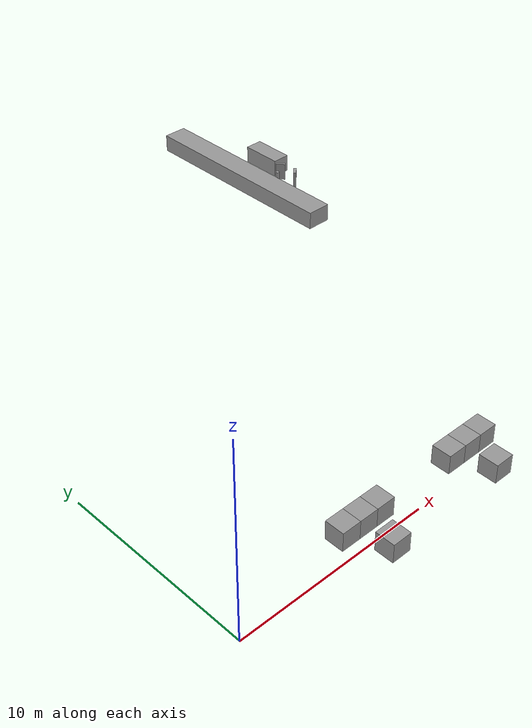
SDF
<sdf version="1.7">
 <world name="default">
  <light name="sun" type="directional">
   <pose>0 0 10 0 -0 0</pose>
   <diffuse>0.8 0.8 0.8 1</diffuse>
   <specular>0.2 0.2 0.2 1</specular>
   <attenuation>
    <range>1000</range>
    <constant>0.9</constant>
    <linear>0.01</linear>
    <quadratic>0.001</quadratic>
   </attenuation>
   <direction>-0.5 0.1 -0.9</direction>
   <spot><inner_angle>0</inner_angle><outer_angle>0</outer_angle><falloff>0</falloff></spot>
  </light>
  <plugin name="ros_interface_plugin" filename="librotors_gazebo_ros_interface_plugin.so"/>
  <spherical_coordinates>
   <surface_model>EARTH_WGS84</surface_model>
   <latitude_deg>47.3667</latitude_deg>
   <longitude_deg>8.55</longitude_deg>
   <elevation>500</elevation>
   <heading_deg>0</heading_deg>
  </spherical_coordinates>
  <physics type="ode">
   <ode>
    <solver>
     <type>quick</type>
     <iters>1000</iters>
     <sor>1.3</sor>
     <use_dynamic_moi_rescaling>0</use_dynamic_moi_rescaling>
    </solver>
    <constraints>
     <cfm>0</cfm>
     <erp>0.2</erp>
     <contact_max_correcting_vel>100</contact_max_correcting_vel>
     <contact_surface_layer>0.001</contact_surface_layer>
    </constraints>
   </ode>
   <max_step_size>0.001</max_step_size>
   <real_time_factor>1</real_time_factor>
   <real_time_update_rate>1000</real_time_update_rate>
   <gravity>0 0 -9.8</gravity>
  </physics>
  <gravity>0 0 -9.8</gravity>
  <magnetic_field>6e-06 2.3e-05 -4.2e-05</magnetic_field>
  <atmosphere type="adiabatic"/>
  <scene><ambient>0.4 0.4 0.4 1</ambient><background>0.7 0.7 0.7 1</background><shadows>1</shadows></scene>
  <model name="unit_box_3">
   <pose>8.5 1 0.494157 0 -0 0</pose>
   <link name="link">
    <inertial>
     <mass>1</mass>
     <inertia>
      <ixx>0.166667</ixx>
      <ixy>0</ixy>
      <ixz>0</ixz>
      <iyy>0.166667</iyy>
      <iyz>0</iyz>
      <izz>0.166667</izz>
     </inertia>
    </inertial>
    <collision name="collision"><geometry><box><size>1 1 1</size></box></geometry></collision>
    <visual name="visual">
     <geometry><box><size>1 1 1</size></box></geometry>
     <material>
      <script><name>Gazebo/Grey</name><uri>file://media/materials/scripts/gazebo.material</uri></script>
     </material>
    </visual>
   </link>
  </model>
  <model name="unit_box_4">
   <pose>7.5 -0.8 0.494157 0 -0 0</pose>
   <link name="link">
    <inertial>
     <mass>1</mass>
     <inertia>
      <ixx>0.166667</ixx>
      <ixy>0</ixy>
      <ixz>0</ixz>
      <iyy>0.166667</iyy>
      <iyz>0</iyz>
      <izz>0.166667</izz>
     </inertia>
    </inertial>
    <collision name="collision"><geometry><box><size>1 1 1</size></box></geometry></collision>
    <visual name="visual">
     <geometry><box><size>1 1 1</size></box></geometry>
     <material>
      <script><name>Gazebo/Grey</name><uri>file://media/materials/scripts/gazebo.material</uri></script>
     </material>
    </visual>
   </link>
  </model>
  <model name="unit_box_5">
   <pose>15 0.999994 0.494157 0 -0 3e-06</pose>
   <link name="link">
    <inertial>
     <mass>1</mass>
     <inertia>
      <ixx>0.166667</ixx>
      <ixy>0</ixy>
      <ixz>0</ixz>
      <iyy>0.166667</iyy>
      <iyz>0</iyz>
      <izz>0.166667</izz>
     </inertia>
    </inertial>
    <collision name="collision"><geometry><box><size>1 1 1</size></box></geometry></collision>
    <visual name="visual">
     <geometry><box><size>1 1 1</size></box></geometry>
     <material>
      <script><name>Gazebo/Grey</name><uri>file://media/materials/scripts/gazebo.material</uri></script>
     </material>
    </visual>
   </link>
  </model>
  <model name="unit_box_5_clone">
   <pose>14 0.999989 0.494157 0 -0 3e-06</pose>
   <link name="link">
    <inertial>
     <mass>1</mass>
     <inertia>
      <ixx>0.166667</ixx>
      <ixy>0</ixy>
      <ixz>0</ixz>
      <iyy>0.166667</iyy>
      <iyz>0</iyz>
      <izz>0.166667</izz>
     </inertia>
    </inertial>
    <collision name="collision"><geometry><box><size>1 1 1</size></box></geometry></collision>
    <visual name="visual">
     <geometry><box><size>1 1 1</size></box></geometry>
     <material>
      <script><name>Gazebo/Grey</name><uri>file://media/materials/scripts/gazebo.material</uri></script>
     </material>
    </visual>
   </link>
  </model>
  <model name="unit_box_5_clone_clone">
   <pose>13 0.999995 0.494152 1e-05 -0 2e-06</pose>
   <link name="link">
    <inertial>
     <mass>1</mass>
     <inertia>
      <ixx>0.166667</ixx>
      <ixy>0</ixy>
      <ixz>0</ixz>
      <iyy>0.166667</iyy>
      <iyz>0</iyz>
      <izz>0.166667</izz>
     </inertia>
    </inertial>
    <collision name="collision"><geometry><box><size>1 1 1</size></box></geometry></collision>
    <visual name="visual">
     <geometry><box><size>1 1 1</size></box></geometry>
     <material>
      <script><name>Gazebo/Grey</name><uri>file://media/materials/scripts/gazebo.material</uri></script>
     </material>
    </visual>
   </link>
  </model>
  <model name="unit_box_5_clone_clone_clone">
   <pose>7.49998 0.999989 0.494157 0 -0 -1e-06</pose>
   <link name="link">
    <inertial>
     <mass>1</mass>
     <inertia>
      <ixx>0.166667</ixx>
      <ixy>0</ixy>
      <ixz>0</ixz>
      <iyy>0.166667</iyy>
      <iyz>0</iyz>
      <izz>0.166667</izz>
     </inertia>
    </inertial>
    <collision name="collision"><geometry><box><size>1 1 1</size></box></geometry></collision>
    <visual name="visual">
     <geometry><box><size>1 1 1</size></box></geometry>
     <material>
      <script><name>Gazebo/Grey</name><uri>file://media/materials/scripts/gazebo.material</uri></script>
     </material>
    </visual>
   </link>
  </model>
  <model name="unit_box_5_clone_clone_clone_0">
   <pose>6.49998 0.999991 0.494157 0 -0 -1e-06</pose>
   <link name="link">
    <inertial>
     <mass>1</mass>
     <inertia>
      <ixx>0.166667</ixx>
      <ixy>0</ixy>
      <ixz>0</ixz>
      <iyy>0.166667</iyy>
      <iyz>0</iyz>
      <izz>0.166667</izz>
     </inertia>
    </inertial>
    <collision name="collision"><geometry><box><size>1 1 1</size></box></geometry></collision>
    <visual name="visual">
     <geometry><box><size>1 1 1</size></box></geometry>
     <material>
      <script><name>Gazebo/Grey</name><uri>file://media/materials/scripts/gazebo.material</uri></script>
     </material>
    </visual>
   </link>
  </model>
  <model name="unit_box_4_clone">
   <pose>14 -0.74 0.494157 0 -0 0</pose>
   <link name="link">
    <inertial>
     <mass>1</mass>
     <inertia>
      <ixx>0.166667</ixx>
      <ixy>0</ixy>
      <ixz>0</ixz>
      <iyy>0.166667</iyy>
      <iyz>0</iyz>
      <izz>0.166667</izz>
     </inertia>
    </inertial>
    <collision name="collision"><geometry><box><size>1 1 1</size></box></geometry></collision>
    <visual name="visual">
     <geometry><box><size>1 1 1</size></box></geometry>
     <material>
      <script><name>Gazebo/Grey</name><uri>file://media/materials/scripts/gazebo.material</uri></script>
     </material>
    </visual>
   </link>
  </model>
  <model name="unit_box">
   <pose>22.6039 24.5896 0.494157 0 -0 0.00242</pose>
   <link name="link">
    <inertial>
     <mass>1</mass>
     <inertia>
      <ixx>0.166667</ixx>
      <ixy>0</ixy>
      <ixz>0</ixz>
      <iyy>0.166667</iyy>
      <iyz>0</iyz>
      <izz>0.166667</izz>
     </inertia>
    </inertial>
    <collision name="collision"><geometry><box><size>1.35477 12.2543 1</size></box></geometry></collision>
    <visual name="visual">
     <geometry><box><size>1.35477 12.2543 1</size></box></geometry>
     <material>
      <script><name>Gazebo/Grey</name><uri>file://media/materials/scripts/gazebo.material</uri></script>
     </material>
    </visual>
   </link>
  </model>
  <model name="unit_cylinder">
   <pose>23.7534 22.9581 0.494157 0 -0 -6e-06</pose>
   <link name="link">
    <inertial>
     <mass>1</mass>
     <inertia><ixx>0.145833</ixx><ixy>0</ixy><ixz>0</ixz><iyy>0.145833</iyy><iyz>0</iyz><izz>0.125</izz></inertia>
    </inertial>
    <collision name="collision">
     <geometry><cylinder><radius>0.102696</radius><length>1</length></cylinder></geometry>
    </collision>
    <visual name="visual">
     <geometry><cylinder><radius>0.102696</radius><length>1</length></cylinder></geometry>
     <material>
      <script><name>Gazebo/Grey</name><uri>file://media/materials/scripts/gazebo.material</uri></script>
     </material>
    </visual>
   </link>
  </model>
  <model name="unit_box_1">
   <pose>24.5642 22.3775 0.494157 0 0 -0.79004</pose>
   <link name="link">
    <inertial>
     <mass>1</mass>
     <inertia>
      <ixx>0.166667</ixx>
      <ixy>0</ixy>
      <ixz>0</ixz>
      <iyy>0.166667</iyy>
      <iyz>0</iyz>
      <izz>0.166667</izz>
     </inertia>
    </inertial>
    <collision name="collision"><geometry><box><size>0.161682 0.527855 1</size></box></geometry></collision>
    <visual name="visual">
     <geometry><box><size>0.161682 0.527855 1</size></box></geometry>
     <material>
      <script><name>Gazebo/Grey</name><uri>file://media/materials/scripts/gazebo.material</uri></script>
     </material>
    </visual>
   </link>
  </model>
  <model name="unit_box_1_clone">
   <pose>24.5306 23.54 0.494156 -1e-06 -1e-06 0.780753</pose>
   <link name="link">
    <inertial>
     <mass>1</mass>
     <inertia>
      <ixx>0.166667</ixx>
      <ixy>0</ixy>
      <ixz>0</ixz>
      <iyy>0.166667</iyy>
      <iyz>0</iyz>
      <izz>0.166667</izz>
     </inertia>
    </inertial>
    <collision name="collision"><geometry><box><size>0.161682 0.527858 1</size></box></geometry></collision>
    <visual name="visual">
     <geometry><box><size>0.161682 0.527858 1</size></box></geometry>
     <material>
      <script><name>Gazebo/Grey</name><uri>file://media/materials/scripts/gazebo.material</uri></script>
     </material>
    </visual>
   </link>
  </model>
  <model name="unit_box_0">
   <pose>24.9887 25.1435 0.494152 -4e-06 -0 -5e-06</pose>
   <link name="link">
    <inertial>
     <mass>1</mass>
     <inertia>
      <ixx>0.166667</ixx>
      <ixy>0</ixy>
      <ixz>0</ixz>
      <iyy>0.166667</iyy>
      <iyz>0</iyz>
      <izz>0.166667</izz>
     </inertia>
    </inertial>
    <collision name="collision"><geometry><box><size>1 2.36399 1</size></box></geometry></collision>
    <visual name="visual">
     <geometry><box><size>1 2.36399 1</size></box></geometry>
     <material>
      <script><name>Gazebo/Grey</name><uri>file://media/materials/scripts/gazebo.material</uri></script>
     </material>
    </visual>
   </link>
  </model>
 </world>
</sdf>
